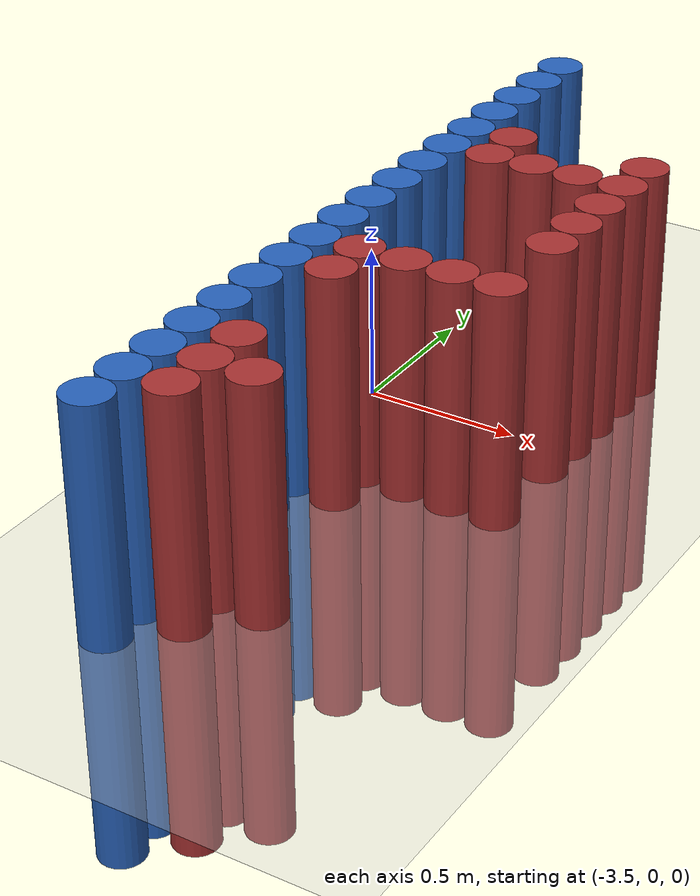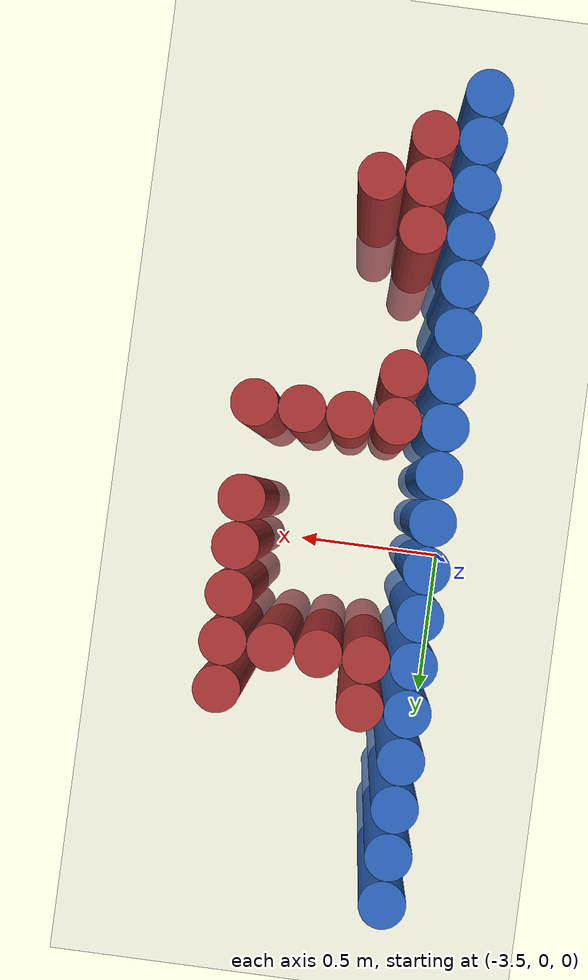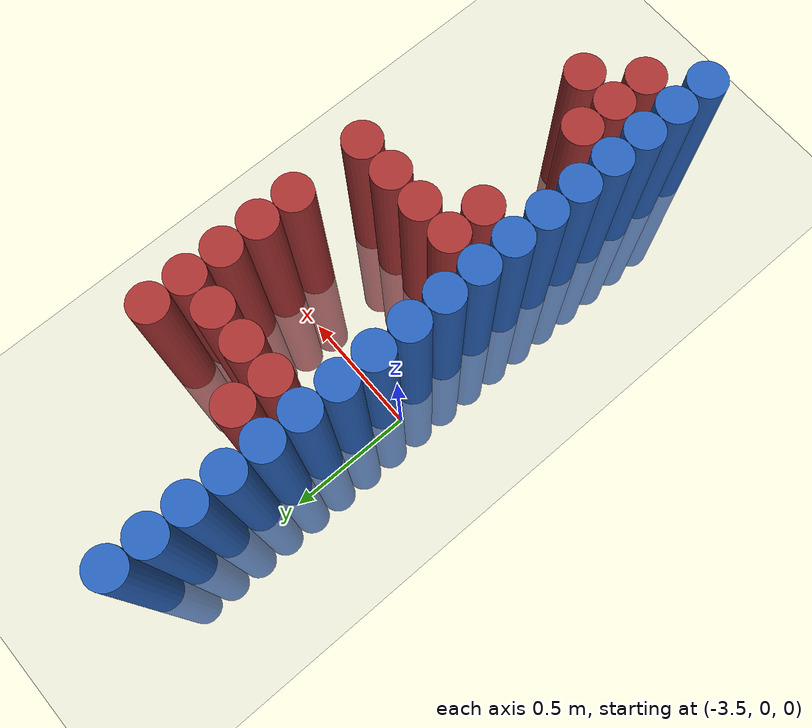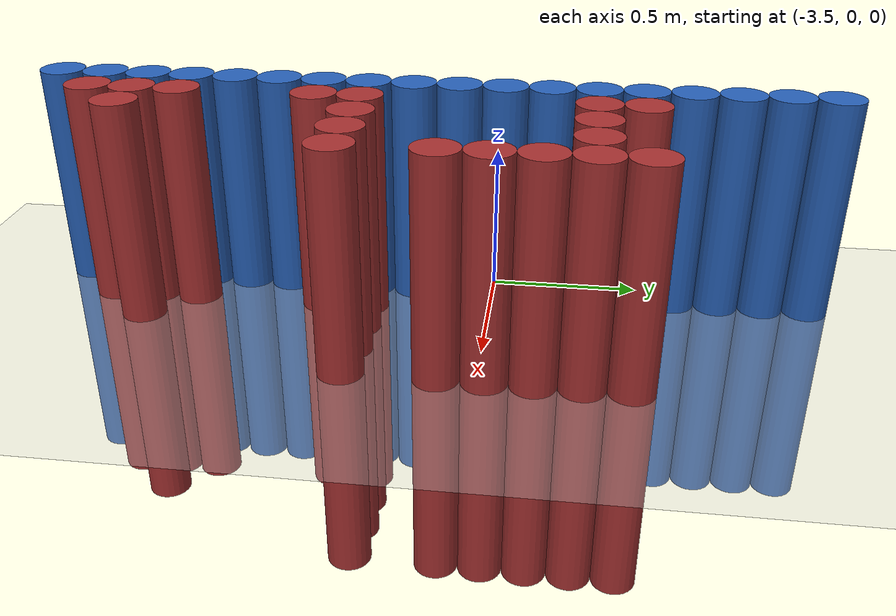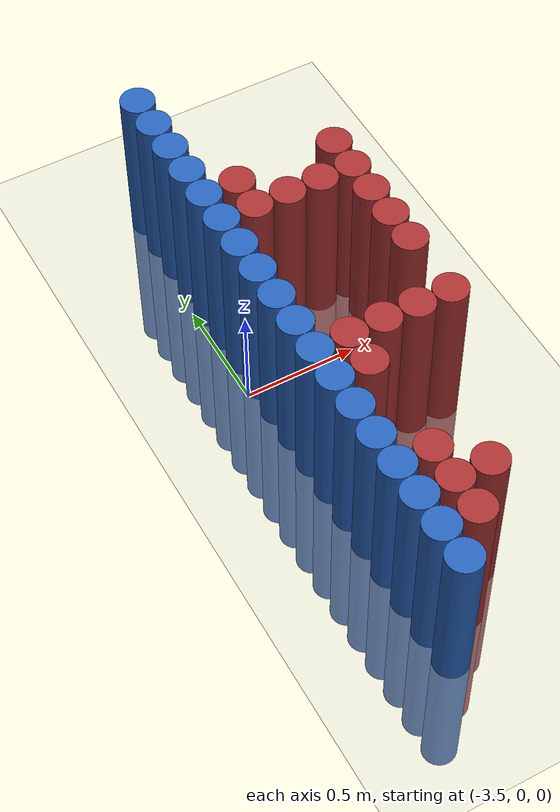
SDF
<sdf version="1.6">
 <world name="default">
  <model name="ground_plane">
   <static>1</static>
   <link name="link">
    <collision name="collision">
     <geometry><plane><normal>0 0 1</normal><size>100 100</size></plane></geometry>
     <surface><friction><ode><mu>100</mu><mu2>50</mu2></ode></friction></surface>
    </collision>
    <visual name="visual">
     <cast_shadows>0</cast_shadows>
     <geometry><plane><normal>0 0 1</normal><size>100 100</size></plane></geometry>
     <material>
      <script><uri>file://media/materials/scripts/gazebo.material</uri><name>Gazebo/Grey</name></script>
     </material>
    </visual>
   </link>
  </model>
  <model name="unit_cylinder_97">
   <static>1</static>
   <pose>-3.425000 -1.325000 0.000000 0.000000 0.000000 0.000000</pose>
   <link name="link">
    <inertial>
     <mass>1</mass>
     <inertia><ixx>0.145833</ixx><ixy>0</ixy><ixz>0</ixz><iyy>0.145833</iyy><iyz>0</iyz><izz>0.125</izz></inertia>
    </inertial>
    <collision name="collision">
     <geometry><cylinder><radius>0.075000</radius><length>1.5</length></cylinder></geometry>
    </collision>
    <visual name="visual">
     <geometry><cylinder><radius>0.075000</radius><length>1.5</length></cylinder></geometry>
     <material>
      <ambient>0.152000 0.379000 0.720000 1</ambient>
      <diffuse>0.152000 0.379000 0.720000 1</diffuse>
     </material>
     <material>
      <script><name>Gazebo/Grey</name><uri>file://media/materials/scripts/gazebo.material</uri></script>
     </material>
    </visual>
   </link>
  </model>
  <model name="unit_cylinder_99">
   <static>1</static>
   <pose>-3.425000 -1.175000 0.000000 0.000000 0.000000 0.000000</pose>
   <link name="link">
    <inertial>
     <mass>1</mass>
     <inertia><ixx>0.145833</ixx><ixy>0</ixy><ixz>0</ixz><iyy>0.145833</iyy><iyz>0</iyz><izz>0.125</izz></inertia>
    </inertial>
    <collision name="collision">
     <geometry><cylinder><radius>0.075000</radius><length>1.5</length></cylinder></geometry>
    </collision>
    <visual name="visual">
     <geometry><cylinder><radius>0.075000</radius><length>1.5</length></cylinder></geometry>
     <material>
      <ambient>0.152000 0.379000 0.720000 1</ambient>
      <diffuse>0.152000 0.379000 0.720000 1</diffuse>
     </material>
     <material>
      <script><name>Gazebo/Grey</name><uri>file://media/materials/scripts/gazebo.material</uri></script>
     </material>
    </visual>
   </link>
  </model>
  <model name="unit_cylinder_101">
   <static>1</static>
   <pose>-3.425000 -1.025000 0.000000 0.000000 0.000000 0.000000</pose>
   <link name="link">
    <inertial>
     <mass>1</mass>
     <inertia><ixx>0.145833</ixx><ixy>0</ixy><ixz>0</ixz><iyy>0.145833</iyy><iyz>0</iyz><izz>0.125</izz></inertia>
    </inertial>
    <collision name="collision">
     <geometry><cylinder><radius>0.075000</radius><length>1.5</length></cylinder></geometry>
    </collision>
    <visual name="visual">
     <geometry><cylinder><radius>0.075000</radius><length>1.5</length></cylinder></geometry>
     <material>
      <ambient>0.152000 0.379000 0.720000 1</ambient>
      <diffuse>0.152000 0.379000 0.720000 1</diffuse>
     </material>
     <material>
      <script><name>Gazebo/Grey</name><uri>file://media/materials/scripts/gazebo.material</uri></script>
     </material>
    </visual>
   </link>
  </model>
  <model name="unit_cylinder_103">
   <static>1</static>
   <pose>-3.425000 -0.875000 0.000000 0.000000 0.000000 0.000000</pose>
   <link name="link">
    <inertial>
     <mass>1</mass>
     <inertia><ixx>0.145833</ixx><ixy>0</ixy><ixz>0</ixz><iyy>0.145833</iyy><iyz>0</iyz><izz>0.125</izz></inertia>
    </inertial>
    <collision name="collision">
     <geometry><cylinder><radius>0.075000</radius><length>1.5</length></cylinder></geometry>
    </collision>
    <visual name="visual">
     <geometry><cylinder><radius>0.075000</radius><length>1.5</length></cylinder></geometry>
     <material>
      <ambient>0.152000 0.379000 0.720000 1</ambient>
      <diffuse>0.152000 0.379000 0.720000 1</diffuse>
     </material>
     <material>
      <script><name>Gazebo/Grey</name><uri>file://media/materials/scripts/gazebo.material</uri></script>
     </material>
    </visual>
   </link>
  </model>
  <model name="unit_cylinder_105">
   <static>1</static>
   <pose>-3.425000 -0.725000 0.000000 0.000000 0.000000 0.000000</pose>
   <link name="link">
    <inertial>
     <mass>1</mass>
     <inertia><ixx>0.145833</ixx><ixy>0</ixy><ixz>0</ixz><iyy>0.145833</iyy><iyz>0</iyz><izz>0.125</izz></inertia>
    </inertial>
    <collision name="collision">
     <geometry><cylinder><radius>0.075000</radius><length>1.5</length></cylinder></geometry>
    </collision>
    <visual name="visual">
     <geometry><cylinder><radius>0.075000</radius><length>1.5</length></cylinder></geometry>
     <material>
      <ambient>0.152000 0.379000 0.720000 1</ambient>
      <diffuse>0.152000 0.379000 0.720000 1</diffuse>
     </material>
     <material>
      <script><name>Gazebo/Grey</name><uri>file://media/materials/scripts/gazebo.material</uri></script>
     </material>
    </visual>
   </link>
  </model>
  <model name="unit_cylinder_107">
   <static>1</static>
   <pose>-3.425000 -0.575000 0.000000 0.000000 0.000000 0.000000</pose>
   <link name="link">
    <inertial>
     <mass>1</mass>
     <inertia><ixx>0.145833</ixx><ixy>0</ixy><ixz>0</ixz><iyy>0.145833</iyy><iyz>0</iyz><izz>0.125</izz></inertia>
    </inertial>
    <collision name="collision">
     <geometry><cylinder><radius>0.075000</radius><length>1.5</length></cylinder></geometry>
    </collision>
    <visual name="visual">
     <geometry><cylinder><radius>0.075000</radius><length>1.5</length></cylinder></geometry>
     <material>
      <ambient>0.152000 0.379000 0.720000 1</ambient>
      <diffuse>0.152000 0.379000 0.720000 1</diffuse>
     </material>
     <material>
      <script><name>Gazebo/Grey</name><uri>file://media/materials/scripts/gazebo.material</uri></script>
     </material>
    </visual>
   </link>
  </model>
  <model name="unit_cylinder_109">
   <static>1</static>
   <pose>-3.425000 -0.425000 0.000000 0.000000 0.000000 0.000000</pose>
   <link name="link">
    <inertial>
     <mass>1</mass>
     <inertia><ixx>0.145833</ixx><ixy>0</ixy><ixz>0</ixz><iyy>0.145833</iyy><iyz>0</iyz><izz>0.125</izz></inertia>
    </inertial>
    <collision name="collision">
     <geometry><cylinder><radius>0.075000</radius><length>1.5</length></cylinder></geometry>
    </collision>
    <visual name="visual">
     <geometry><cylinder><radius>0.075000</radius><length>1.5</length></cylinder></geometry>
     <material>
      <ambient>0.152000 0.379000 0.720000 1</ambient>
      <diffuse>0.152000 0.379000 0.720000 1</diffuse>
     </material>
     <material>
      <script><name>Gazebo/Grey</name><uri>file://media/materials/scripts/gazebo.material</uri></script>
     </material>
    </visual>
   </link>
  </model>
  <model name="unit_cylinder_111">
   <static>1</static>
   <pose>-3.425000 -0.275000 0.000000 0.000000 0.000000 0.000000</pose>
   <link name="link">
    <inertial>
     <mass>1</mass>
     <inertia><ixx>0.145833</ixx><ixy>0</ixy><ixz>0</ixz><iyy>0.145833</iyy><iyz>0</iyz><izz>0.125</izz></inertia>
    </inertial>
    <collision name="collision">
     <geometry><cylinder><radius>0.075000</radius><length>1.5</length></cylinder></geometry>
    </collision>
    <visual name="visual">
     <geometry><cylinder><radius>0.075000</radius><length>1.5</length></cylinder></geometry>
     <material>
      <ambient>0.152000 0.379000 0.720000 1</ambient>
      <diffuse>0.152000 0.379000 0.720000 1</diffuse>
     </material>
     <material>
      <script><name>Gazebo/Grey</name><uri>file://media/materials/scripts/gazebo.material</uri></script>
     </material>
    </visual>
   </link>
  </model>
  <model name="unit_cylinder_113">
   <static>1</static>
   <pose>-3.425000 -0.125000 0.000000 0.000000 0.000000 0.000000</pose>
   <link name="link">
    <inertial>
     <mass>1</mass>
     <inertia><ixx>0.145833</ixx><ixy>0</ixy><ixz>0</ixz><iyy>0.145833</iyy><iyz>0</iyz><izz>0.125</izz></inertia>
    </inertial>
    <collision name="collision">
     <geometry><cylinder><radius>0.075000</radius><length>1.5</length></cylinder></geometry>
    </collision>
    <visual name="visual">
     <geometry><cylinder><radius>0.075000</radius><length>1.5</length></cylinder></geometry>
     <material>
      <ambient>0.152000 0.379000 0.720000 1</ambient>
      <diffuse>0.152000 0.379000 0.720000 1</diffuse>
     </material>
     <material>
      <script><name>Gazebo/Grey</name><uri>file://media/materials/scripts/gazebo.material</uri></script>
     </material>
    </visual>
   </link>
  </model>
  <model name="unit_cylinder_115">
   <static>1</static>
   <pose>-3.425000 0.025000 0.000000 0.000000 0.000000 0.000000</pose>
   <link name="link">
    <inertial>
     <mass>1</mass>
     <inertia><ixx>0.145833</ixx><ixy>0</ixy><ixz>0</ixz><iyy>0.145833</iyy><iyz>0</iyz><izz>0.125</izz></inertia>
    </inertial>
    <collision name="collision">
     <geometry><cylinder><radius>0.075000</radius><length>1.5</length></cylinder></geometry>
    </collision>
    <visual name="visual">
     <geometry><cylinder><radius>0.075000</radius><length>1.5</length></cylinder></geometry>
     <material>
      <ambient>0.152000 0.379000 0.720000 1</ambient>
      <diffuse>0.152000 0.379000 0.720000 1</diffuse>
     </material>
     <material>
      <script><name>Gazebo/Grey</name><uri>file://media/materials/scripts/gazebo.material</uri></script>
     </material>
    </visual>
   </link>
  </model>
  <model name="unit_cylinder_117">
   <static>1</static>
   <pose>-3.425000 0.175000 0.000000 0.000000 0.000000 0.000000</pose>
   <link name="link">
    <inertial>
     <mass>1</mass>
     <inertia><ixx>0.145833</ixx><ixy>0</ixy><ixz>0</ixz><iyy>0.145833</iyy><iyz>0</iyz><izz>0.125</izz></inertia>
    </inertial>
    <collision name="collision">
     <geometry><cylinder><radius>0.075000</radius><length>1.5</length></cylinder></geometry>
    </collision>
    <visual name="visual">
     <geometry><cylinder><radius>0.075000</radius><length>1.5</length></cylinder></geometry>
     <material>
      <ambient>0.152000 0.379000 0.720000 1</ambient>
      <diffuse>0.152000 0.379000 0.720000 1</diffuse>
     </material>
     <material>
      <script><name>Gazebo/Grey</name><uri>file://media/materials/scripts/gazebo.material</uri></script>
     </material>
    </visual>
   </link>
  </model>
  <model name="unit_cylinder_119">
   <static>1</static>
   <pose>-3.425000 0.325000 0.000000 0.000000 0.000000 0.000000</pose>
   <link name="link">
    <inertial>
     <mass>1</mass>
     <inertia><ixx>0.145833</ixx><ixy>0</ixy><ixz>0</ixz><iyy>0.145833</iyy><iyz>0</iyz><izz>0.125</izz></inertia>
    </inertial>
    <collision name="collision">
     <geometry><cylinder><radius>0.075000</radius><length>1.5</length></cylinder></geometry>
    </collision>
    <visual name="visual">
     <geometry><cylinder><radius>0.075000</radius><length>1.5</length></cylinder></geometry>
     <material>
      <ambient>0.152000 0.379000 0.720000 1</ambient>
      <diffuse>0.152000 0.379000 0.720000 1</diffuse>
     </material>
     <material>
      <script><name>Gazebo/Grey</name><uri>file://media/materials/scripts/gazebo.material</uri></script>
     </material>
    </visual>
   </link>
  </model>
  <model name="unit_cylinder_121">
   <static>1</static>
   <pose>-3.425000 0.475000 0.000000 0.000000 0.000000 0.000000</pose>
   <link name="link">
    <inertial>
     <mass>1</mass>
     <inertia><ixx>0.145833</ixx><ixy>0</ixy><ixz>0</ixz><iyy>0.145833</iyy><iyz>0</iyz><izz>0.125</izz></inertia>
    </inertial>
    <collision name="collision">
     <geometry><cylinder><radius>0.075000</radius><length>1.5</length></cylinder></geometry>
    </collision>
    <visual name="visual">
     <geometry><cylinder><radius>0.075000</radius><length>1.5</length></cylinder></geometry>
     <material>
      <ambient>0.152000 0.379000 0.720000 1</ambient>
      <diffuse>0.152000 0.379000 0.720000 1</diffuse>
     </material>
     <material>
      <script><name>Gazebo/Grey</name><uri>file://media/materials/scripts/gazebo.material</uri></script>
     </material>
    </visual>
   </link>
  </model>
  <model name="unit_cylinder_123">
   <static>1</static>
   <pose>-3.425000 0.625000 0.000000 0.000000 0.000000 0.000000</pose>
   <link name="link">
    <inertial>
     <mass>1</mass>
     <inertia><ixx>0.145833</ixx><ixy>0</ixy><ixz>0</ixz><iyy>0.145833</iyy><iyz>0</iyz><izz>0.125</izz></inertia>
    </inertial>
    <collision name="collision">
     <geometry><cylinder><radius>0.075000</radius><length>1.5</length></cylinder></geometry>
    </collision>
    <visual name="visual">
     <geometry><cylinder><radius>0.075000</radius><length>1.5</length></cylinder></geometry>
     <material>
      <ambient>0.152000 0.379000 0.720000 1</ambient>
      <diffuse>0.152000 0.379000 0.720000 1</diffuse>
     </material>
     <material>
      <script><name>Gazebo/Grey</name><uri>file://media/materials/scripts/gazebo.material</uri></script>
     </material>
    </visual>
   </link>
  </model>
  <model name="unit_cylinder_125">
   <static>1</static>
   <pose>-3.425000 0.775000 0.000000 0.000000 0.000000 0.000000</pose>
   <link name="link">
    <inertial>
     <mass>1</mass>
     <inertia><ixx>0.145833</ixx><ixy>0</ixy><ixz>0</ixz><iyy>0.145833</iyy><iyz>0</iyz><izz>0.125</izz></inertia>
    </inertial>
    <collision name="collision">
     <geometry><cylinder><radius>0.075000</radius><length>1.5</length></cylinder></geometry>
    </collision>
    <visual name="visual">
     <geometry><cylinder><radius>0.075000</radius><length>1.5</length></cylinder></geometry>
     <material>
      <ambient>0.152000 0.379000 0.720000 1</ambient>
      <diffuse>0.152000 0.379000 0.720000 1</diffuse>
     </material>
     <material>
      <script><name>Gazebo/Grey</name><uri>file://media/materials/scripts/gazebo.material</uri></script>
     </material>
    </visual>
   </link>
  </model>
  <model name="unit_cylinder_127">
   <static>1</static>
   <pose>-3.425000 0.925000 0.000000 0.000000 0.000000 0.000000</pose>
   <link name="link">
    <inertial>
     <mass>1</mass>
     <inertia><ixx>0.145833</ixx><ixy>0</ixy><ixz>0</ixz><iyy>0.145833</iyy><iyz>0</iyz><izz>0.125</izz></inertia>
    </inertial>
    <collision name="collision">
     <geometry><cylinder><radius>0.075000</radius><length>1.5</length></cylinder></geometry>
    </collision>
    <visual name="visual">
     <geometry><cylinder><radius>0.075000</radius><length>1.5</length></cylinder></geometry>
     <material>
      <ambient>0.152000 0.379000 0.720000 1</ambient>
      <diffuse>0.152000 0.379000 0.720000 1</diffuse>
     </material>
     <material>
      <script><name>Gazebo/Grey</name><uri>file://media/materials/scripts/gazebo.material</uri></script>
     </material>
    </visual>
   </link>
  </model>
  <model name="unit_cylinder_129">
   <static>1</static>
   <pose>-3.425000 1.075000 0.000000 0.000000 0.000000 0.000000</pose>
   <link name="link">
    <inertial>
     <mass>1</mass>
     <inertia><ixx>0.145833</ixx><ixy>0</ixy><ixz>0</ixz><iyy>0.145833</iyy><iyz>0</iyz><izz>0.125</izz></inertia>
    </inertial>
    <collision name="collision">
     <geometry><cylinder><radius>0.075000</radius><length>1.5</length></cylinder></geometry>
    </collision>
    <visual name="visual">
     <geometry><cylinder><radius>0.075000</radius><length>1.5</length></cylinder></geometry>
     <material>
      <ambient>0.152000 0.379000 0.720000 1</ambient>
      <diffuse>0.152000 0.379000 0.720000 1</diffuse>
     </material>
     <material>
      <script><name>Gazebo/Grey</name><uri>file://media/materials/scripts/gazebo.material</uri></script>
     </material>
    </visual>
   </link>
  </model>
  <model name="unit_cylinder_211">
   <static>1</static>
   <pose>-3.425000 -1.475000 0.000000 0.000000 0.000000 0.000000</pose>
   <link name="link">
    <inertial>
     <mass>1</mass>
     <inertia><ixx>0.145833</ixx><ixy>0</ixy><ixz>0</ixz><iyy>0.145833</iyy><iyz>0</iyz><izz>0.125</izz></inertia>
    </inertial>
    <collision name="collision">
     <geometry><cylinder><radius>0.075000</radius><length>1.5</length></cylinder></geometry>
    </collision>
    <visual name="visual">
     <geometry><cylinder><radius>0.075000</radius><length>1.5</length></cylinder></geometry>
     <material>
      <ambient>0.152000 0.379000 0.720000 1</ambient>
      <diffuse>0.152000 0.379000 0.720000 1</diffuse>
     </material>
     <material>
      <script><name>Gazebo/Grey</name><uri>file://media/materials/scripts/gazebo.material</uri></script>
     </material>
    </visual>
   </link>
  </model>
  <model name="unit_cylinder_212">
   <static>1</static>
   <pose>-3.425000 -1.325000 0.000000 0.000000 0.000000 0.000000</pose>
   <link name="link">
    <inertial>
     <mass>1</mass>
     <inertia><ixx>0.145833</ixx><ixy>0</ixy><ixz>0</ixz><iyy>0.145833</iyy><iyz>0</iyz><izz>0.125</izz></inertia>
    </inertial>
    <collision name="collision">
     <geometry><cylinder><radius>0.075000</radius><length>1.5</length></cylinder></geometry>
    </collision>
    <visual name="visual">
     <geometry><cylinder><radius>0.075000</radius><length>1.5</length></cylinder></geometry>
     <material>
      <ambient>0.152000 0.379000 0.720000 1</ambient>
      <diffuse>0.152000 0.379000 0.720000 1</diffuse>
     </material>
     <material>
      <script><name>Gazebo/Grey</name><uri>file://media/materials/scripts/gazebo.material</uri></script>
     </material>
    </visual>
   </link>
  </model>
  <model name="unit_cylinder_213">
   <static>1</static>
   <pose>-3.425000 -1.175000 0.000000 0.000000 0.000000 0.000000</pose>
   <link name="link">
    <inertial>
     <mass>1</mass>
     <inertia><ixx>0.145833</ixx><ixy>0</ixy><ixz>0</ixz><iyy>0.145833</iyy><iyz>0</iyz><izz>0.125</izz></inertia>
    </inertial>
    <collision name="collision">
     <geometry><cylinder><radius>0.075000</radius><length>1.5</length></cylinder></geometry>
    </collision>
    <visual name="visual">
     <geometry><cylinder><radius>0.075000</radius><length>1.5</length></cylinder></geometry>
     <material>
      <ambient>0.152000 0.379000 0.720000 1</ambient>
      <diffuse>0.152000 0.379000 0.720000 1</diffuse>
     </material>
     <material>
      <script><name>Gazebo/Grey</name><uri>file://media/materials/scripts/gazebo.material</uri></script>
     </material>
    </visual>
   </link>
  </model>
  <model name="unit_cylinder_214">
   <static>1</static>
   <pose>-3.425000 -1.025000 0.000000 0.000000 0.000000 0.000000</pose>
   <link name="link">
    <inertial>
     <mass>1</mass>
     <inertia><ixx>0.145833</ixx><ixy>0</ixy><ixz>0</ixz><iyy>0.145833</iyy><iyz>0</iyz><izz>0.125</izz></inertia>
    </inertial>
    <collision name="collision">
     <geometry><cylinder><radius>0.075000</radius><length>1.5</length></cylinder></geometry>
    </collision>
    <visual name="visual">
     <geometry><cylinder><radius>0.075000</radius><length>1.5</length></cylinder></geometry>
     <material>
      <ambient>0.152000 0.379000 0.720000 1</ambient>
      <diffuse>0.152000 0.379000 0.720000 1</diffuse>
     </material>
     <material>
      <script><name>Gazebo/Grey</name><uri>file://media/materials/scripts/gazebo.material</uri></script>
     </material>
    </visual>
   </link>
  </model>
  <model name="unit_cylinder_215">
   <static>1</static>
   <pose>-3.425000 -0.875000 0.000000 0.000000 0.000000 0.000000</pose>
   <link name="link">
    <inertial>
     <mass>1</mass>
     <inertia><ixx>0.145833</ixx><ixy>0</ixy><ixz>0</ixz><iyy>0.145833</iyy><iyz>0</iyz><izz>0.125</izz></inertia>
    </inertial>
    <collision name="collision">
     <geometry><cylinder><radius>0.075000</radius><length>1.5</length></cylinder></geometry>
    </collision>
    <visual name="visual">
     <geometry><cylinder><radius>0.075000</radius><length>1.5</length></cylinder></geometry>
     <material>
      <ambient>0.152000 0.379000 0.720000 1</ambient>
      <diffuse>0.152000 0.379000 0.720000 1</diffuse>
     </material>
     <material>
      <script><name>Gazebo/Grey</name><uri>file://media/materials/scripts/gazebo.material</uri></script>
     </material>
    </visual>
   </link>
  </model>
  <model name="unit_cylinder_216">
   <static>1</static>
   <pose>-3.425000 -0.725000 0.000000 0.000000 0.000000 0.000000</pose>
   <link name="link">
    <inertial>
     <mass>1</mass>
     <inertia><ixx>0.145833</ixx><ixy>0</ixy><ixz>0</ixz><iyy>0.145833</iyy><iyz>0</iyz><izz>0.125</izz></inertia>
    </inertial>
    <collision name="collision">
     <geometry><cylinder><radius>0.075000</radius><length>1.5</length></cylinder></geometry>
    </collision>
    <visual name="visual">
     <geometry><cylinder><radius>0.075000</radius><length>1.5</length></cylinder></geometry>
     <material>
      <ambient>0.152000 0.379000 0.720000 1</ambient>
      <diffuse>0.152000 0.379000 0.720000 1</diffuse>
     </material>
     <material>
      <script><name>Gazebo/Grey</name><uri>file://media/materials/scripts/gazebo.material</uri></script>
     </material>
    </visual>
   </link>
  </model>
  <model name="unit_cylinder_217">
   <static>1</static>
   <pose>-3.425000 -0.575000 0.000000 0.000000 0.000000 0.000000</pose>
   <link name="link">
    <inertial>
     <mass>1</mass>
     <inertia><ixx>0.145833</ixx><ixy>0</ixy><ixz>0</ixz><iyy>0.145833</iyy><iyz>0</iyz><izz>0.125</izz></inertia>
    </inertial>
    <collision name="collision">
     <geometry><cylinder><radius>0.075000</radius><length>1.5</length></cylinder></geometry>
    </collision>
    <visual name="visual">
     <geometry><cylinder><radius>0.075000</radius><length>1.5</length></cylinder></geometry>
     <material>
      <ambient>0.152000 0.379000 0.720000 1</ambient>
      <diffuse>0.152000 0.379000 0.720000 1</diffuse>
     </material>
     <material>
      <script><name>Gazebo/Grey</name><uri>file://media/materials/scripts/gazebo.material</uri></script>
     </material>
    </visual>
   </link>
  </model>
  <model name="unit_cylinder_218">
   <static>1</static>
   <pose>-3.425000 -0.425000 0.000000 0.000000 0.000000 0.000000</pose>
   <link name="link">
    <inertial>
     <mass>1</mass>
     <inertia><ixx>0.145833</ixx><ixy>0</ixy><ixz>0</ixz><iyy>0.145833</iyy><iyz>0</iyz><izz>0.125</izz></inertia>
    </inertial>
    <collision name="collision">
     <geometry><cylinder><radius>0.075000</radius><length>1.5</length></cylinder></geometry>
    </collision>
    <visual name="visual">
     <geometry><cylinder><radius>0.075000</radius><length>1.5</length></cylinder></geometry>
     <material>
      <ambient>0.152000 0.379000 0.720000 1</ambient>
      <diffuse>0.152000 0.379000 0.720000 1</diffuse>
     </material>
     <material>
      <script><name>Gazebo/Grey</name><uri>file://media/materials/scripts/gazebo.material</uri></script>
     </material>
    </visual>
   </link>
  </model>
  <model name="unit_cylinder_219">
   <static>1</static>
   <pose>-3.425000 -0.275000 0.000000 0.000000 0.000000 0.000000</pose>
   <link name="link">
    <inertial>
     <mass>1</mass>
     <inertia><ixx>0.145833</ixx><ixy>0</ixy><ixz>0</ixz><iyy>0.145833</iyy><iyz>0</iyz><izz>0.125</izz></inertia>
    </inertial>
    <collision name="collision">
     <geometry><cylinder><radius>0.075000</radius><length>1.5</length></cylinder></geometry>
    </collision>
    <visual name="visual">
     <geometry><cylinder><radius>0.075000</radius><length>1.5</length></cylinder></geometry>
     <material>
      <ambient>0.152000 0.379000 0.720000 1</ambient>
      <diffuse>0.152000 0.379000 0.720000 1</diffuse>
     </material>
     <material>
      <script><name>Gazebo/Grey</name><uri>file://media/materials/scripts/gazebo.material</uri></script>
     </material>
    </visual>
   </link>
  </model>
  <model name="unit_cylinder_220">
   <static>1</static>
   <pose>-3.425000 -0.125000 0.000000 0.000000 0.000000 0.000000</pose>
   <link name="link">
    <inertial>
     <mass>1</mass>
     <inertia><ixx>0.145833</ixx><ixy>0</ixy><ixz>0</ixz><iyy>0.145833</iyy><iyz>0</iyz><izz>0.125</izz></inertia>
    </inertial>
    <collision name="collision">
     <geometry><cylinder><radius>0.075000</radius><length>1.5</length></cylinder></geometry>
    </collision>
    <visual name="visual">
     <geometry><cylinder><radius>0.075000</radius><length>1.5</length></cylinder></geometry>
     <material>
      <ambient>0.152000 0.379000 0.720000 1</ambient>
      <diffuse>0.152000 0.379000 0.720000 1</diffuse>
     </material>
     <material>
      <script><name>Gazebo/Grey</name><uri>file://media/materials/scripts/gazebo.material</uri></script>
     </material>
    </visual>
   </link>
  </model>
  <model name="unit_cylinder_221">
   <static>1</static>
   <pose>-3.425000 0.025000 0.000000 0.000000 0.000000 0.000000</pose>
   <link name="link">
    <inertial>
     <mass>1</mass>
     <inertia><ixx>0.145833</ixx><ixy>0</ixy><ixz>0</ixz><iyy>0.145833</iyy><iyz>0</iyz><izz>0.125</izz></inertia>
    </inertial>
    <collision name="collision">
     <geometry><cylinder><radius>0.075000</radius><length>1.5</length></cylinder></geometry>
    </collision>
    <visual name="visual">
     <geometry><cylinder><radius>0.075000</radius><length>1.5</length></cylinder></geometry>
     <material>
      <ambient>0.152000 0.379000 0.720000 1</ambient>
      <diffuse>0.152000 0.379000 0.720000 1</diffuse>
     </material>
     <material>
      <script><name>Gazebo/Grey</name><uri>file://media/materials/scripts/gazebo.material</uri></script>
     </material>
    </visual>
   </link>
  </model>
  <model name="unit_cylinder_222">
   <static>1</static>
   <pose>-3.425000 0.175000 0.000000 0.000000 0.000000 0.000000</pose>
   <link name="link">
    <inertial>
     <mass>1</mass>
     <inertia><ixx>0.145833</ixx><ixy>0</ixy><ixz>0</ixz><iyy>0.145833</iyy><iyz>0</iyz><izz>0.125</izz></inertia>
    </inertial>
    <collision name="collision">
     <geometry><cylinder><radius>0.075000</radius><length>1.5</length></cylinder></geometry>
    </collision>
    <visual name="visual">
     <geometry><cylinder><radius>0.075000</radius><length>1.5</length></cylinder></geometry>
     <material>
      <ambient>0.152000 0.379000 0.720000 1</ambient>
      <diffuse>0.152000 0.379000 0.720000 1</diffuse>
     </material>
     <material>
      <script><name>Gazebo/Grey</name><uri>file://media/materials/scripts/gazebo.material</uri></script>
     </material>
    </visual>
   </link>
  </model>
  <model name="unit_cylinder_223">
   <static>1</static>
   <pose>-3.425000 0.325000 0.000000 0.000000 0.000000 0.000000</pose>
   <link name="link">
    <inertial>
     <mass>1</mass>
     <inertia><ixx>0.145833</ixx><ixy>0</ixy><ixz>0</ixz><iyy>0.145833</iyy><iyz>0</iyz><izz>0.125</izz></inertia>
    </inertial>
    <collision name="collision">
     <geometry><cylinder><radius>0.075000</radius><length>1.5</length></cylinder></geometry>
    </collision>
    <visual name="visual">
     <geometry><cylinder><radius>0.075000</radius><length>1.5</length></cylinder></geometry>
     <material>
      <ambient>0.152000 0.379000 0.720000 1</ambient>
      <diffuse>0.152000 0.379000 0.720000 1</diffuse>
     </material>
     <material>
      <script><name>Gazebo/Grey</name><uri>file://media/materials/scripts/gazebo.material</uri></script>
     </material>
    </visual>
   </link>
  </model>
  <model name="unit_cylinder_224">
   <static>1</static>
   <pose>-3.425000 0.475000 0.000000 0.000000 0.000000 0.000000</pose>
   <link name="link">
    <inertial>
     <mass>1</mass>
     <inertia><ixx>0.145833</ixx><ixy>0</ixy><ixz>0</ixz><iyy>0.145833</iyy><iyz>0</iyz><izz>0.125</izz></inertia>
    </inertial>
    <collision name="collision">
     <geometry><cylinder><radius>0.075000</radius><length>1.5</length></cylinder></geometry>
    </collision>
    <visual name="visual">
     <geometry><cylinder><radius>0.075000</radius><length>1.5</length></cylinder></geometry>
     <material>
      <ambient>0.152000 0.379000 0.720000 1</ambient>
      <diffuse>0.152000 0.379000 0.720000 1</diffuse>
     </material>
     <material>
      <script><name>Gazebo/Grey</name><uri>file://media/materials/scripts/gazebo.material</uri></script>
     </material>
    </visual>
   </link>
  </model>
  <model name="unit_cylinder_225">
   <static>1</static>
   <pose>-3.425000 0.625000 0.000000 0.000000 0.000000 0.000000</pose>
   <link name="link">
    <inertial>
     <mass>1</mass>
     <inertia><ixx>0.145833</ixx><ixy>0</ixy><ixz>0</ixz><iyy>0.145833</iyy><iyz>0</iyz><izz>0.125</izz></inertia>
    </inertial>
    <collision name="collision">
     <geometry><cylinder><radius>0.075000</radius><length>1.5</length></cylinder></geometry>
    </collision>
    <visual name="visual">
     <geometry><cylinder><radius>0.075000</radius><length>1.5</length></cylinder></geometry>
     <material>
      <ambient>0.152000 0.379000 0.720000 1</ambient>
      <diffuse>0.152000 0.379000 0.720000 1</diffuse>
     </material>
     <material>
      <script><name>Gazebo/Grey</name><uri>file://media/materials/scripts/gazebo.material</uri></script>
     </material>
    </visual>
   </link>
  </model>
  <model name="unit_cylinder_226">
   <static>1</static>
   <pose>-3.425000 0.775000 0.000000 0.000000 0.000000 0.000000</pose>
   <link name="link">
    <inertial>
     <mass>1</mass>
     <inertia><ixx>0.145833</ixx><ixy>0</ixy><ixz>0</ixz><iyy>0.145833</iyy><iyz>0</iyz><izz>0.125</izz></inertia>
    </inertial>
    <collision name="collision">
     <geometry><cylinder><radius>0.075000</radius><length>1.5</length></cylinder></geometry>
    </collision>
    <visual name="visual">
     <geometry><cylinder><radius>0.075000</radius><length>1.5</length></cylinder></geometry>
     <material>
      <ambient>0.152000 0.379000 0.720000 1</ambient>
      <diffuse>0.152000 0.379000 0.720000 1</diffuse>
     </material>
     <material>
      <script><name>Gazebo/Grey</name><uri>file://media/materials/scripts/gazebo.material</uri></script>
     </material>
    </visual>
   </link>
  </model>
  <model name="unit_cylinder_227">
   <static>1</static>
   <pose>-3.425000 0.925000 0.000000 0.000000 0.000000 0.000000</pose>
   <link name="link">
    <inertial>
     <mass>1</mass>
     <inertia><ixx>0.145833</ixx><ixy>0</ixy><ixz>0</ixz><iyy>0.145833</iyy><iyz>0</iyz><izz>0.125</izz></inertia>
    </inertial>
    <collision name="collision">
     <geometry><cylinder><radius>0.075000</radius><length>1.5</length></cylinder></geometry>
    </collision>
    <visual name="visual">
     <geometry><cylinder><radius>0.075000</radius><length>1.5</length></cylinder></geometry>
     <material>
      <ambient>0.152000 0.379000 0.720000 1</ambient>
      <diffuse>0.152000 0.379000 0.720000 1</diffuse>
     </material>
     <material>
      <script><name>Gazebo/Grey</name><uri>file://media/materials/scripts/gazebo.material</uri></script>
     </material>
    </visual>
   </link>
  </model>
  <model name="unit_cylinder_228">
   <static>1</static>
   <pose>-3.425000 1.075000 0.000000 0.000000 0.000000 0.000000</pose>
   <link name="link">
    <inertial>
     <mass>1</mass>
     <inertia><ixx>0.145833</ixx><ixy>0</ixy><ixz>0</ixz><iyy>0.145833</iyy><iyz>0</iyz><izz>0.125</izz></inertia>
    </inertial>
    <collision name="collision">
     <geometry><cylinder><radius>0.075000</radius><length>1.5</length></cylinder></geometry>
    </collision>
    <visual name="visual">
     <geometry><cylinder><radius>0.075000</radius><length>1.5</length></cylinder></geometry>
     <material>
      <ambient>0.152000 0.379000 0.720000 1</ambient>
      <diffuse>0.152000 0.379000 0.720000 1</diffuse>
     </material>
     <material>
      <script><name>Gazebo/Grey</name><uri>file://media/materials/scripts/gazebo.material</uri></script>
     </material>
    </visual>
   </link>
  </model>
  <model name="unit_cylinder_258">
   <static>1</static>
   <pose>-3.275000 -1.325000 0.000000 0.000000 0.000000 0.000000</pose>
   <link name="link">
    <inertial>
     <mass>1</mass>
     <inertia><ixx>0.145833</ixx><ixy>0</ixy><ixz>0</ixz><iyy>0.145833</iyy><iyz>0</iyz><izz>0.125</izz></inertia>
    </inertial>
    <collision name="collision">
     <geometry><cylinder><radius>0.075000</radius><length>1.5</length></cylinder></geometry>
    </collision>
    <visual name="visual">
     <geometry><cylinder><radius>0.075000</radius><length>1.5</length></cylinder></geometry>
     <material>
      <ambient>0.648000 0.192000 0.192000 1</ambient>
      <diffuse>0.648000 0.192000 0.192000 1</diffuse>
     </material>
     <material>
      <script><name>Gazebo/Grey</name><uri>file://media/materials/scripts/gazebo.material</uri></script>
     </material>
    </visual>
   </link>
  </model>
  <model name="unit_cylinder_259">
   <static>1</static>
   <pose>-3.275000 -1.175000 0.000000 0.000000 0.000000 0.000000</pose>
   <link name="link">
    <inertial>
     <mass>1</mass>
     <inertia><ixx>0.145833</ixx><ixy>0</ixy><ixz>0</ixz><iyy>0.145833</iyy><iyz>0</iyz><izz>0.125</izz></inertia>
    </inertial>
    <collision name="collision">
     <geometry><cylinder><radius>0.075000</radius><length>1.5</length></cylinder></geometry>
    </collision>
    <visual name="visual">
     <geometry><cylinder><radius>0.075000</radius><length>1.5</length></cylinder></geometry>
     <material>
      <ambient>0.648000 0.192000 0.192000 1</ambient>
      <diffuse>0.648000 0.192000 0.192000 1</diffuse>
     </material>
     <material>
      <script><name>Gazebo/Grey</name><uri>file://media/materials/scripts/gazebo.material</uri></script>
     </material>
    </visual>
   </link>
  </model>
  <model name="unit_cylinder_260">
   <static>1</static>
   <pose>-3.275000 -1.025000 0.000000 0.000000 0.000000 0.000000</pose>
   <link name="link">
    <inertial>
     <mass>1</mass>
     <inertia><ixx>0.145833</ixx><ixy>0</ixy><ixz>0</ixz><iyy>0.145833</iyy><iyz>0</iyz><izz>0.125</izz></inertia>
    </inertial>
    <collision name="collision">
     <geometry><cylinder><radius>0.075000</radius><length>1.5</length></cylinder></geometry>
    </collision>
    <visual name="visual">
     <geometry><cylinder><radius>0.075000</radius><length>1.5</length></cylinder></geometry>
     <material>
      <ambient>0.648000 0.192000 0.192000 1</ambient>
      <diffuse>0.648000 0.192000 0.192000 1</diffuse>
     </material>
     <material>
      <script><name>Gazebo/Grey</name><uri>file://media/materials/scripts/gazebo.material</uri></script>
     </material>
    </visual>
   </link>
  </model>
  <model name="unit_cylinder_261">
   <static>1</static>
   <pose>-3.275000 -0.575000 0.000000 0.000000 0.000000 0.000000</pose>
   <link name="link">
    <inertial>
     <mass>1</mass>
     <inertia><ixx>0.145833</ixx><ixy>0</ixy><ixz>0</ixz><iyy>0.145833</iyy><iyz>0</iyz><izz>0.125</izz></inertia>
    </inertial>
    <collision name="collision">
     <geometry><cylinder><radius>0.075000</radius><length>1.5</length></cylinder></geometry>
    </collision>
    <visual name="visual">
     <geometry><cylinder><radius>0.075000</radius><length>1.5</length></cylinder></geometry>
     <material>
      <ambient>0.648000 0.192000 0.192000 1</ambient>
      <diffuse>0.648000 0.192000 0.192000 1</diffuse>
     </material>
     <material>
      <script><name>Gazebo/Grey</name><uri>file://media/materials/scripts/gazebo.material</uri></script>
     </material>
    </visual>
   </link>
  </model>
  <model name="unit_cylinder_262">
   <static>1</static>
   <pose>-3.275000 -0.425000 0.000000 0.000000 0.000000 0.000000</pose>
   <link name="link">
    <inertial>
     <mass>1</mass>
     <inertia><ixx>0.145833</ixx><ixy>0</ixy><ixz>0</ixz><iyy>0.145833</iyy><iyz>0</iyz><izz>0.125</izz></inertia>
    </inertial>
    <collision name="collision">
     <geometry><cylinder><radius>0.075000</radius><length>1.5</length></cylinder></geometry>
    </collision>
    <visual name="visual">
     <geometry><cylinder><radius>0.075000</radius><length>1.5</length></cylinder></geometry>
     <material>
      <ambient>0.648000 0.192000 0.192000 1</ambient>
      <diffuse>0.648000 0.192000 0.192000 1</diffuse>
     </material>
     <material>
      <script><name>Gazebo/Grey</name><uri>file://media/materials/scripts/gazebo.material</uri></script>
     </material>
    </visual>
   </link>
  </model>
  <model name="unit_cylinder_263">
   <static>1</static>
   <pose>-3.275000 0.325000 0.000000 0.000000 0.000000 0.000000</pose>
   <link name="link">
    <inertial>
     <mass>1</mass>
     <inertia><ixx>0.145833</ixx><ixy>0</ixy><ixz>0</ixz><iyy>0.145833</iyy><iyz>0</iyz><izz>0.125</izz></inertia>
    </inertial>
    <collision name="collision">
     <geometry><cylinder><radius>0.075000</radius><length>1.5</length></cylinder></geometry>
    </collision>
    <visual name="visual">
     <geometry><cylinder><radius>0.075000</radius><length>1.5</length></cylinder></geometry>
     <material>
      <ambient>0.648000 0.192000 0.192000 1</ambient>
      <diffuse>0.648000 0.192000 0.192000 1</diffuse>
     </material>
     <material>
      <script><name>Gazebo/Grey</name><uri>file://media/materials/scripts/gazebo.material</uri></script>
     </material>
    </visual>
   </link>
  </model>
  <model name="unit_cylinder_264">
   <static>1</static>
   <pose>-3.275000 0.475000 0.000000 0.000000 0.000000 0.000000</pose>
   <link name="link">
    <inertial>
     <mass>1</mass>
     <inertia><ixx>0.145833</ixx><ixy>0</ixy><ixz>0</ixz><iyy>0.145833</iyy><iyz>0</iyz><izz>0.125</izz></inertia>
    </inertial>
    <collision name="collision">
     <geometry><cylinder><radius>0.075000</radius><length>1.5</length></cylinder></geometry>
    </collision>
    <visual name="visual">
     <geometry><cylinder><radius>0.075000</radius><length>1.5</length></cylinder></geometry>
     <material>
      <ambient>0.648000 0.192000 0.192000 1</ambient>
      <diffuse>0.648000 0.192000 0.192000 1</diffuse>
     </material>
     <material>
      <script><name>Gazebo/Grey</name><uri>file://media/materials/scripts/gazebo.material</uri></script>
     </material>
    </visual>
   </link>
  </model>
  <model name="unit_cylinder_287">
   <static>1</static>
   <pose>-3.125000 -1.175000 0.000000 0.000000 0.000000 0.000000</pose>
   <link name="link">
    <inertial>
     <mass>1</mass>
     <inertia><ixx>0.145833</ixx><ixy>0</ixy><ixz>0</ixz><iyy>0.145833</iyy><iyz>0</iyz><izz>0.125</izz></inertia>
    </inertial>
    <collision name="collision">
     <geometry><cylinder><radius>0.075000</radius><length>1.5</length></cylinder></geometry>
    </collision>
    <visual name="visual">
     <geometry><cylinder><radius>0.075000</radius><length>1.5</length></cylinder></geometry>
     <material>
      <ambient>0.648000 0.192000 0.192000 1</ambient>
      <diffuse>0.648000 0.192000 0.192000 1</diffuse>
     </material>
     <material>
      <script><name>Gazebo/Grey</name><uri>file://media/materials/scripts/gazebo.material</uri></script>
     </material>
    </visual>
   </link>
  </model>
  <model name="unit_cylinder_288">
   <static>1</static>
   <pose>-3.125000 -0.425000 0.000000 0.000000 0.000000 0.000000</pose>
   <link name="link">
    <inertial>
     <mass>1</mass>
     <inertia><ixx>0.145833</ixx><ixy>0</ixy><ixz>0</ixz><iyy>0.145833</iyy><iyz>0</iyz><izz>0.125</izz></inertia>
    </inertial>
    <collision name="collision">
     <geometry><cylinder><radius>0.075000</radius><length>1.5</length></cylinder></geometry>
    </collision>
    <visual name="visual">
     <geometry><cylinder><radius>0.075000</radius><length>1.5</length></cylinder></geometry>
     <material>
      <ambient>0.648000 0.192000 0.192000 1</ambient>
      <diffuse>0.648000 0.192000 0.192000 1</diffuse>
     </material>
     <material>
      <script><name>Gazebo/Grey</name><uri>file://media/materials/scripts/gazebo.material</uri></script>
     </material>
    </visual>
   </link>
  </model>
  <model name="unit_cylinder_289">
   <static>1</static>
   <pose>-3.125000 0.325000 0.000000 0.000000 0.000000 0.000000</pose>
   <link name="link">
    <inertial>
     <mass>1</mass>
     <inertia><ixx>0.145833</ixx><ixy>0</ixy><ixz>0</ixz><iyy>0.145833</iyy><iyz>0</iyz><izz>0.125</izz></inertia>
    </inertial>
    <collision name="collision">
     <geometry><cylinder><radius>0.075000</radius><length>1.5</length></cylinder></geometry>
    </collision>
    <visual name="visual">
     <geometry><cylinder><radius>0.075000</radius><length>1.5</length></cylinder></geometry>
     <material>
      <ambient>0.648000 0.192000 0.192000 1</ambient>
      <diffuse>0.648000 0.192000 0.192000 1</diffuse>
     </material>
     <material>
      <script><name>Gazebo/Grey</name><uri>file://media/materials/scripts/gazebo.material</uri></script>
     </material>
    </visual>
   </link>
  </model>
  <model name="unit_cylinder_298">
   <static>1</static>
   <pose>-2.975000 -0.425000 0.000000 0.000000 0.000000 0.000000</pose>
   <link name="link">
    <inertial>
     <mass>1</mass>
     <inertia><ixx>0.145833</ixx><ixy>0</ixy><ixz>0</ixz><iyy>0.145833</iyy><iyz>0</iyz><izz>0.125</izz></inertia>
    </inertial>
    <collision name="collision">
     <geometry><cylinder><radius>0.075000</radius><length>1.5</length></cylinder></geometry>
    </collision>
    <visual name="visual">
     <geometry><cylinder><radius>0.075000</radius><length>1.5</length></cylinder></geometry>
     <material>
      <ambient>0.648000 0.192000 0.192000 1</ambient>
      <diffuse>0.648000 0.192000 0.192000 1</diffuse>
     </material>
     <material>
      <script><name>Gazebo/Grey</name><uri>file://media/materials/scripts/gazebo.material</uri></script>
     </material>
    </visual>
   </link>
  </model>
  <model name="unit_cylinder_299">
   <static>1</static>
   <pose>-2.975000 0.325000 0.000000 0.000000 0.000000 0.000000</pose>
   <link name="link">
    <inertial>
     <mass>1</mass>
     <inertia><ixx>0.145833</ixx><ixy>0</ixy><ixz>0</ixz><iyy>0.145833</iyy><iyz>0</iyz><izz>0.125</izz></inertia>
    </inertial>
    <collision name="collision">
     <geometry><cylinder><radius>0.075000</radius><length>1.5</length></cylinder></geometry>
    </collision>
    <visual name="visual">
     <geometry><cylinder><radius>0.075000</radius><length>1.5</length></cylinder></geometry>
     <material>
      <ambient>0.648000 0.192000 0.192000 1</ambient>
      <diffuse>0.648000 0.192000 0.192000 1</diffuse>
     </material>
     <material>
      <script><name>Gazebo/Grey</name><uri>file://media/materials/scripts/gazebo.material</uri></script>
     </material>
    </visual>
   </link>
  </model>
  <model name="unit_cylinder_304">
   <static>1</static>
   <pose>-2.825000 -0.425000 0.000000 0.000000 0.000000 0.000000</pose>
   <link name="link">
    <inertial>
     <mass>1</mass>
     <inertia><ixx>0.145833</ixx><ixy>0</ixy><ixz>0</ixz><iyy>0.145833</iyy><iyz>0</iyz><izz>0.125</izz></inertia>
    </inertial>
    <collision name="collision">
     <geometry><cylinder><radius>0.075000</radius><length>1.5</length></cylinder></geometry>
    </collision>
    <visual name="visual">
     <geometry><cylinder><radius>0.075000</radius><length>1.5</length></cylinder></geometry>
     <material>
      <ambient>0.648000 0.192000 0.192000 1</ambient>
      <diffuse>0.648000 0.192000 0.192000 1</diffuse>
     </material>
     <material>
      <script><name>Gazebo/Grey</name><uri>file://media/materials/scripts/gazebo.material</uri></script>
     </material>
    </visual>
   </link>
  </model>
  <model name="unit_cylinder_305">
   <static>1</static>
   <pose>-2.825000 -0.125000 0.000000 0.000000 0.000000 0.000000</pose>
   <link name="link">
    <inertial>
     <mass>1</mass>
     <inertia><ixx>0.145833</ixx><ixy>0</ixy><ixz>0</ixz><iyy>0.145833</iyy><iyz>0</iyz><izz>0.125</izz></inertia>
    </inertial>
    <collision name="collision">
     <geometry><cylinder><radius>0.075000</radius><length>1.5</length></cylinder></geometry>
    </collision>
    <visual name="visual">
     <geometry><cylinder><radius>0.075000</radius><length>1.5</length></cylinder></geometry>
     <material>
      <ambient>0.648000 0.192000 0.192000 1</ambient>
      <diffuse>0.648000 0.192000 0.192000 1</diffuse>
     </material>
     <material>
      <script><name>Gazebo/Grey</name><uri>file://media/materials/scripts/gazebo.material</uri></script>
     </material>
    </visual>
   </link>
  </model>
  <model name="unit_cylinder_306">
   <static>1</static>
   <pose>-2.825000 0.025000 0.000000 0.000000 0.000000 0.000000</pose>
   <link name="link">
    <inertial>
     <mass>1</mass>
     <inertia><ixx>0.145833</ixx><ixy>0</ixy><ixz>0</ixz><iyy>0.145833</iyy><iyz>0</iyz><izz>0.125</izz></inertia>
    </inertial>
    <collision name="collision">
     <geometry><cylinder><radius>0.075000</radius><length>1.5</length></cylinder></geometry>
    </collision>
    <visual name="visual">
     <geometry><cylinder><radius>0.075000</radius><length>1.5</length></cylinder></geometry>
     <material>
      <ambient>0.648000 0.192000 0.192000 1</ambient>
      <diffuse>0.648000 0.192000 0.192000 1</diffuse>
     </material>
     <material>
      <script><name>Gazebo/Grey</name><uri>file://media/materials/scripts/gazebo.material</uri></script>
     </material>
    </visual>
   </link>
  </model>
  <model name="unit_cylinder_307">
   <static>1</static>
   <pose>-2.825000 0.175000 0.000000 0.000000 0.000000 0.000000</pose>
   <link name="link">
    <inertial>
     <mass>1</mass>
     <inertia><ixx>0.145833</ixx><ixy>0</ixy><ixz>0</ixz><iyy>0.145833</iyy><iyz>0</iyz><izz>0.125</izz></inertia>
    </inertial>
    <collision name="collision">
     <geometry><cylinder><radius>0.075000</radius><length>1.5</length></cylinder></geometry>
    </collision>
    <visual name="visual">
     <geometry><cylinder><radius>0.075000</radius><length>1.5</length></cylinder></geometry>
     <material>
      <ambient>0.648000 0.192000 0.192000 1</ambient>
      <diffuse>0.648000 0.192000 0.192000 1</diffuse>
     </material>
     <material>
      <script><name>Gazebo/Grey</name><uri>file://media/materials/scripts/gazebo.material</uri></script>
     </material>
    </visual>
   </link>
  </model>
  <model name="unit_cylinder_308">
   <static>1</static>
   <pose>-2.825000 0.325000 0.000000 0.000000 0.000000 0.000000</pose>
   <link name="link">
    <inertial>
     <mass>1</mass>
     <inertia><ixx>0.145833</ixx><ixy>0</ixy><ixz>0</ixz><iyy>0.145833</iyy><iyz>0</iyz><izz>0.125</izz></inertia>
    </inertial>
    <collision name="collision">
     <geometry><cylinder><radius>0.075000</radius><length>1.5</length></cylinder></geometry>
    </collision>
    <visual name="visual">
     <geometry><cylinder><radius>0.075000</radius><length>1.5</length></cylinder></geometry>
     <material>
      <ambient>0.648000 0.192000 0.192000 1</ambient>
      <diffuse>0.648000 0.192000 0.192000 1</diffuse>
     </material>
     <material>
      <script><name>Gazebo/Grey</name><uri>file://media/materials/scripts/gazebo.material</uri></script>
     </material>
    </visual>
   </link>
  </model>
  <model name="unit_cylinder_309">
   <static>1</static>
   <pose>-2.825000 0.475000 0.000000 0.000000 0.000000 0.000000</pose>
   <link name="link">
    <inertial>
     <mass>1</mass>
     <inertia><ixx>0.145833</ixx><ixy>0</ixy><ixz>0</ixz><iyy>0.145833</iyy><iyz>0</iyz><izz>0.125</izz></inertia>
    </inertial>
    <collision name="collision">
     <geometry><cylinder><radius>0.075000</radius><length>1.5</length></cylinder></geometry>
    </collision>
    <visual name="visual">
     <geometry><cylinder><radius>0.075000</radius><length>1.5</length></cylinder></geometry>
     <material>
      <ambient>0.648000 0.192000 0.192000 1</ambient>
      <diffuse>0.648000 0.192000 0.192000 1</diffuse>
     </material>
     <material>
      <script><name>Gazebo/Grey</name><uri>file://media/materials/scripts/gazebo.material</uri></script>
     </material>
    </visual>
   </link>
  </model>
 </world>
</sdf>
